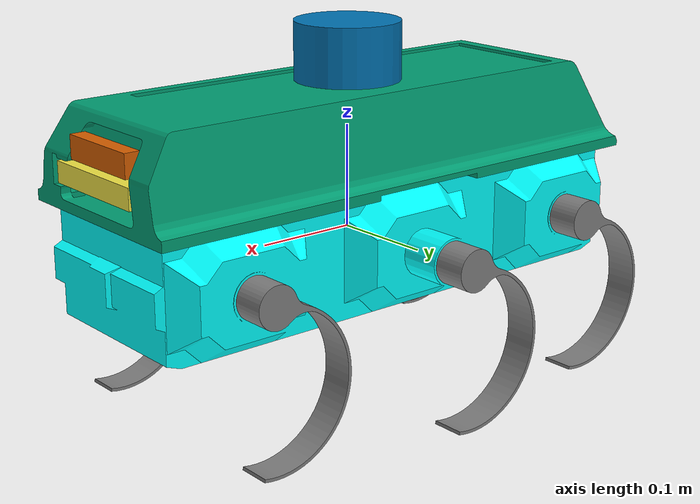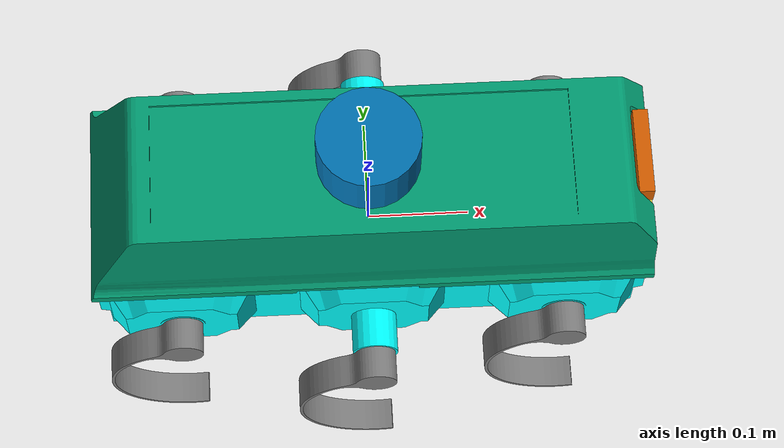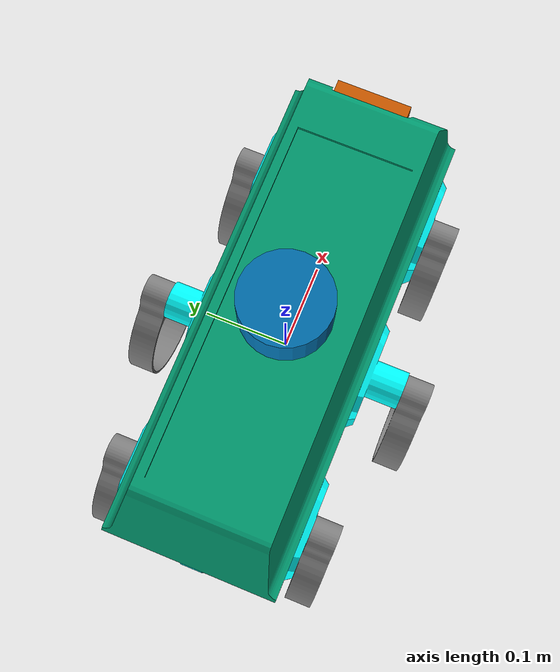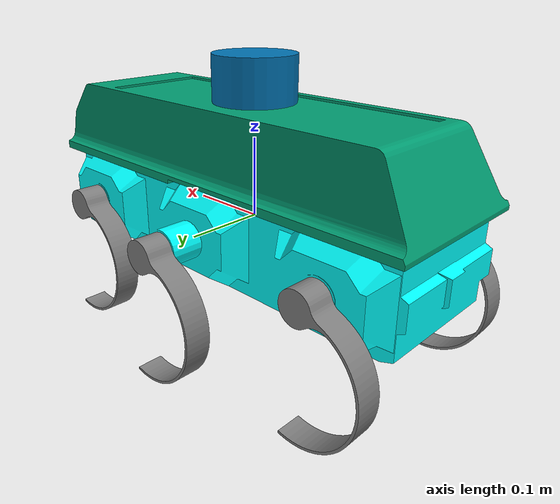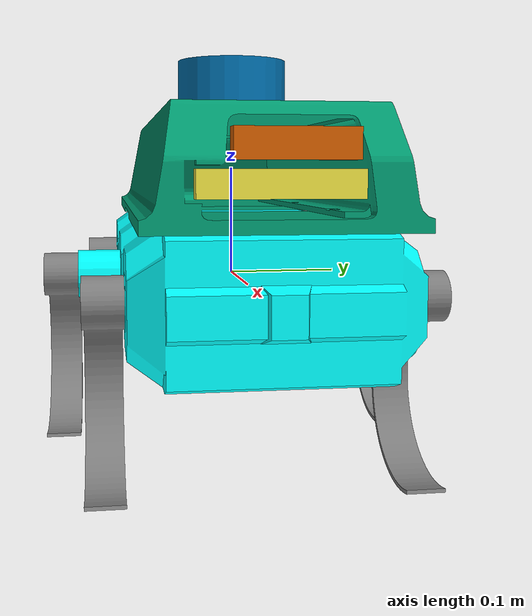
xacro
<?xml version="1.0"?>
<robot name="rhex" xmlns:xacro="http://ros.org/wiki/xacro">

    <!-- Define robot constants -->
    <xacro:property name="base_width" value="0.2"/>
    <xacro:property name="base_length" value="0.554"/>
    <xacro:property name="base_height" value="0.112"/>
    <xacro:property name="upper_case_z_position" value="0.055"/>

    <xacro:property name="ground_clearance" value="0.155"/>

    <xacro:property name="mid_legs_xoff" value="0.0"/>
    <xacro:property name="mid_legs_yoff" value="0.162"/>
    <xacro:property name="edge_legs_xoff" value="0.19"/>
    <xacro:property name="edge_legs_yoff" value="0.1235"/>

    <!-- Include the miscellaneous components -->
    <xacro:include filename="miscellaneous.xacro"/>

    <link name="base_link">
        <visual>
            <origin xyz="0 0 0" rpy="0 0 0"/>
            <geometry>
                <mesh filename="file://$(find rhex_description)/meshes/rpk10_chassis.dae"/>
            </geometry>
            <material name="Cyan"/>
        </visual>

        <collision>
            <origin xyz="0 0 0" rpy="0 0 0"/>
            <geometry>
                <mesh filename="file://$(find rhex_description)/meshes/rpk10_chassis.dae"/>
            </geometry>
        </collision>

    </link>

    <!-- Link the base inertia to the base to get rid of KDL warning (root link with an inertia is not supported) -->
    <link name="base_inertia_link">
        <xacro:box_inertia mass="12.5" width="${base_length}" height="${base_height}" length="${base_width}">
            <origin xyz="0 0 0" rpy="0 0 0"/>
        </xacro:box_inertia>
    </link>

    <joint name="base_inertia_joint" type="fixed">
        <origin xyz="0.0 0.0 0.0" rpy="0 0 0"/>
        <parent link="base_link"/>
        <child link="base_inertia_link"/>
    </joint>

    <!-- Upper case of the robot added -->
    <link name="upper_case_link">
        <visual>
            <origin xyz="0 0 0" rpy="0 0 0"/>
            <geometry>
                <mesh filename="file://$(find rhex_description)/meshes/upper_case.dae" scale="0.001 0.001 0.001"/>
            </geometry>
        </visual>

        <collision>
            <origin xyz="0 0 0" rpy="0 0 0"/>
            <geometry>
                <mesh filename="file://$(find rhex_description)/meshes/upper_case.dae" scale="0.001 0.001 0.001"/>
            </geometry>
        </collision>
    </link>

    <joint name="base_upper_case_joint" type="fixed">
        <origin xyz="0 0 ${upper_case_z_position}" rpy="0 0 0"/>
        <parent link="base_link"/>
        <child link="upper_case_link"/>
    </joint>

    <!-- Include the rest of the simulation properties and body parts-->
    <xacro:include filename="robot_gazebo.xacro"/>
    <xacro:include filename="accessories.xacro"/>
    <xacro:include filename="legs.xacro"/>

    <xacro:leg prefix="rear_right"  x_offset="${-edge_legs_xoff}" y_offset="${-edge_legs_yoff}"/>
    <xacro:leg prefix="rear_left"   x_offset="${-edge_legs_xoff}"  y_offset="${edge_legs_yoff}"/>
    <xacro:leg prefix="mid_left"    x_offset="${mid_legs_xoff}"   y_offset="${mid_legs_yoff}"/>
    <xacro:leg prefix="mid_right"   x_offset="${mid_legs_xoff}"  y_offset="${-mid_legs_yoff}"/>
    <xacro:leg prefix="front_left"  x_offset="${edge_legs_xoff}"  y_offset="${edge_legs_yoff}"/>
    <xacro:leg prefix="front_right" x_offset="${edge_legs_xoff}" y_offset="${-edge_legs_yoff}"/>

    <xacro:macro name="leg_control" params="prefix">
        <joint name="${prefix}_joint">
        <command_interface name="effort">
            <param name="min">-100</param>
            <param name="max">100</param>
        </command_interface>
        <state_interface name="position">
            <param name="initial_value">-1.9</param>
        </state_interface>
        <state_interface name="velocity"/>
        <state_interface name="effort"/>
        </joint>
    </xacro:macro>

    <ros2_control name="GazeboSimSystem" type="system">
        <hardware>
            <plugin>gazebo_ros2_control/GazeboSystem</plugin>
        </hardware>
        <xacro:leg_control prefix="rear_left"/>
        <xacro:leg_control prefix="rear_right"/>
        <xacro:leg_control prefix="mid_left"/>
        <xacro:leg_control prefix="mid_right"/>
        <xacro:leg_control prefix="front_left"/>
        <xacro:leg_control prefix="front_right"/>
    </ros2_control>
</robot>

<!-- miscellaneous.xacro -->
<robot xmlns:xacro="http://www.ros.org/wiki/xacro">

    <!-- This file contains some useful macros and additions regarding the robot model -->

    <!-- Material Colors -->
    <material name="white">
        <color rgba="1 1 1 1"/>
    </material>

    <material name="orange">
        <color rgba="1 0.3 0.1 1"/>
    </material>

    <material name="blue">
        <color rgba="0.2 0.2 1 1"/>
    </material>

    <material name="red">
        <color rgba="1 0.2 0.2 1"/>
    </material>

    <material name="Cyan">
        <color rgba="0 1.0 1.0 1.0"/>
    </material>

    <material name="Gray">
        <color rgba="0.5 0.5 0.5 1.0"/>
    </material>

    <!-- Some common inertial components (Ref:
    https://en.wikipedia.org/wiki/List_of_moments_of_inertia) -->
    <xacro:macro name="sphere_inertia" params="mass radius *origin">
        <inertial>
            <xacro:insert_block name="origin"/>
            <mass value="${mass}"/>
            <inertia ixx="${(2/5) * mass * (radius*radius)}" ixy="0.0" ixz="0.0"
                iyy="${(2/5) * mass * (radius*radius)}" iyz="0.0"
                izz="${(2/5) * mass * (radius*radius)}"/>
        </inertial>
    </xacro:macro>

    <xacro:macro name="box_inertia" params="mass width height length *origin">
        <inertial>
            <xacro:insert_block name="origin"/>
            <mass value="${mass}"/>
            <inertia ixx="${(1/12) * mass * (length*length + height*height)}" ixy="0.0" ixz="0.0"
                iyy="${(1/12) * mass * (width*width + height*height)}" iyz="0.0"
                izz="${(1/12) * mass * (width*width + length*length)}"/>
        </inertial>
    </xacro:macro>

    <xacro:macro name="cylinder_inertia" params="mass radius length *origin">
        <inertial>
            <xacro:insert_block name="origin"/>
            <mass value="${mass}"/>
            <inertia ixx="${(1/12) * mass * (3*radius*radius + length*length)}" ixy="0.0" ixz="0.0"
                iyy="${(1/12) * mass * (3*radius*radius + length*length)}" iyz="0.0"
                izz="${(1/2)  * mass * (radius*radius)}"/>
        </inertial>
    </xacro:macro>

    <xacro:macro name="empty_inertia" params="mass length *origin">
        <inertial>
            <xacro:insert_block name="origin"/>
            <mass value="${mass}"/>
            <inertia ixx="0.0" ixy="0.0" ixz="0.0"
                iyx="0.0" iyy="0.0" iyz="0.0"
                izx="0.0" izy="0.0" izz="0.0"/>
        </inertial>
    </xacro:macro>

    <xacro:macro name="rod_inertia" params="mass length *origin">
        <inertial>
            <xacro:insert_block name="origin"/>
            <mass value="${mass}"/>
            <inertia ixx="${(1/3) * mass * length*length}" ixy="0.0" ixz="0.0"
                iyy="0.0" iyz="0.0"
                izz="${(1/3) * mass * length*length}"/>
        </inertial>
    </xacro:macro>

</robot>

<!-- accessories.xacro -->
<robot xmlns:xacro="http://ros.org/wiki/xacro">

    <!-- Define robot constants -->
    <xacro:property name="base_width" value="0.2"/>
    <xacro:property name="base_length" value="0.554"/>
    <xacro:property name="base_height" value="0.112"/>
    <xacro:property name="upper_case_z_position" value="0.058"/>
    <xacro:property name="imu_y_position" value="-0.005"/>
    <xacro:property name="imu_z_position" value="${base_height/2 + 0.0325}"/>
    <xacro:property name="depth_cam_x_position" value="${base_length/2 - 0.01}"/>
    <xacro:property name="depth_cam_y_position" value="0.0055"/>
    <xacro:property name="depth_cam_z_position" value="${base_height + 0.0035}"/>

    <!-- IMU (Internal Measurement Unit) -->
    <link name="imu_link">
        <visual>
            <origin xyz="0 0 0" rpy="0 0 0"/>
            <geometry>
                <box size="0.015 0.115 0.020"/>
            </geometry>
        </visual>

        <collision>
            <origin xyz="0 0 0" rpy="0 0 0"/>
            <geometry>
                <box size="0.015 0.115 0.020"/>
            </geometry>
        </collision>

        <xacro:box_inertia mass="0.001" width="0.01" height="0.01" length="0.01">
            <origin xyz="0 0 0" rpy="0 0 0" />
        </xacro:box_inertia>
    </link>

    <joint name="imu_joint" type="fixed">
        <origin xyz="${depth_cam_x_position} ${imu_y_position} ${imu_z_position}" rpy="0 0 0"/>
        <parent link="base_link" />
        <child link="imu_link" />
    </joint>

    <gazebo reference="imu_link">
        <sensor name="imu_sensor" type="imu">
            <plugin filename="libgazebo_ros_imu_sensor.so" name="imu_plugin">
                <ros>
                    <namespace>/imu</namespace>
                    <remapping>~/out:=data</remapping>
                </ros>
                <initial_orientation_as_reference>false</initial_orientation_as_reference>
            </plugin>
            <always_on>true</always_on>
            <update_rate>1000</update_rate>
            <visualize>true</visualize>
            <imu>
                <angular_velocity>
                    <x>
                        <noise type="gaussian">
                            <mean>0.0</mean>
                            <stddev>2e-4</stddev>
                            <bias_mean>0.0000075</bias_mean>
                            <bias_stddev>0.0000008</bias_stddev>
                        </noise>
                    </x>
                    <y>
                        <noise type="gaussian">
                            <mean>0.0</mean>
                            <stddev>2e-4</stddev>
                            <bias_mean>0.0000075</bias_mean>
                            <bias_stddev>0.0000008</bias_stddev>
                        </noise>
                    </y>
                    <z>
                        <noise type="gaussian">
                            <mean>0.0</mean>
                            <stddev>2e-4</stddev>
                            <bias_mean>0.0000075</bias_mean>
                            <bias_stddev>0.0000008</bias_stddev>
                        </noise>
                    </z>
                </angular_velocity>
                <linear_acceleration>
                    <x>
                        <noise type="gaussian">
                            <mean>0.0</mean>
                            <stddev>1.7e-2</stddev>
                            <bias_mean>0.1</bias_mean>
                            <bias_stddev>0.001</bias_stddev>
                        </noise>
                    </x>
                    <y>
                        <noise type="gaussian">
                            <mean>0.0</mean>
                            <stddev>1.7e-2</stddev>
                            <bias_mean>0.1</bias_mean>
                            <bias_stddev>0.001</bias_stddev>
                        </noise>
                    </y>
                    <z>
                        <noise type="gaussian">
                            <mean>0.0</mean>
                            <stddev>1.7e-2</stddev>
                            <bias_mean>0.1</bias_mean>
                            <bias_stddev>0.001</bias_stddev>
                        </noise>
                    </z>
                </linear_acceleration>
            </imu>
        </sensor>
    </gazebo>

    <!-- LIDAR (Light Detection and Ranging) -->
    <link name="lidar_link">
        <collision>
            <origin xyz="0 0 0" rpy="0 0 0"/>
            <geometry>
                <cylinder radius="0.0508" length="0.056"/>
            </geometry>
        </collision>

        <visual>
            <origin xyz="0 0 0" rpy="0 0 0"/>
            <geometry>
                <cylinder radius="0.0508" length="0.056"/>
            </geometry>
        </visual>

        <xacro:cylinder_inertia mass="0.125" radius="0.0508" length="0.056">
            <origin xyz="0 0 0" rpy="0 0 0"/>
        </xacro:cylinder_inertia>
    </link>

    <joint name="lidar_joint" type="fixed">
        <parent link="base_link"/>
        <child link="lidar_link"/>
        <origin xyz="0 0 ${2*upper_case_z_position + base_height/2}" rpy="0 0 0"/>
    </joint>

    <gazebo reference="lidar_link">
        <sensor name="lidar" type="ray">
            <always_on>true</always_on>
            <visualize>true</visualize>
            <update_rate>5</update_rate>
            <ray>
                <scan>
                    <horizontal>
                        <samples>360</samples>
                        <resolution>1.000000</resolution>
                        <min_angle>0.000000</min_angle>
                        <max_angle>6.280000</max_angle>
                    </horizontal>
                </scan>
                <range>
                    <min>0.120000</min>
                    <max>3.5</max>
                    <resolution>0.015000</resolution>
                </range>
                <noise>
                    <type>gaussian</type>
                    <mean>0.0</mean>
                    <stddev>0.01</stddev>
                </noise>
            </ray>
            <plugin name="scan" filename="libgazebo_ros_ray_sensor.so">
                <ros>
                    <remapping>~/out:=scan</remapping>
                </ros>
                <output_type>sensor_msgs/LaserScan</output_type>
                <frame_name>lidar_link</frame_name>
            </plugin>
        </sensor>
    </gazebo>

    <!-- RGBD Camera -->
    <link name="camera_link">
        <visual>
            <origin xyz="0 0 0" rpy="0 0 0"/>
            <geometry>
                <box size="0.015 0.0867 0.022"/>
            </geometry>
        </visual>

        <collision>
            <origin xyz="0 0 0" rpy="0 0 0"/>
            <geometry>
                <box size="0.015 0.0867 0.022"/>
            </geometry>
        </collision>

        <xacro:box_inertia mass="0.02" width="0.015" height="0.022" length="0.0867">
            <origin xyz="0 0 0" rpy="0 0 0"/>
        </xacro:box_inertia>
    </link>

    <joint name="camera_joint" type="fixed">
        <parent link="base_link"/>
        <child link="camera_link"/>
        <origin xyz="${depth_cam_x_position} ${depth_cam_y_position} ${depth_cam_z_position}" rpy="0 0 0"/>
    </joint>

    <link name="camera_depth_frame"/>

    <joint name="camera_depth_joint" type="fixed">
        <origin xyz="0 0 0" rpy="${-pi/2} 0 ${-pi/2}"/>
        <parent link="camera_link"/>
        <child link="camera_depth_frame"/>
    </joint>

    <gazebo reference="camera_link">
        <sensor name="depth_camera" type="depth">
            <visualize>true</visualize>
            <update_rate>30.0</update_rate>
            <camera name="camera">
                <horizontal_fov>1.047198</horizontal_fov>
                <image>
                    <width>640</width>
                    <height>480</height>
                    <format>B8G8R8</format>
                </image>
                <clip>
                    <near>0.05</near>
                    <far>30</far>
                </clip>
                <noise>
                    <type>gaussian</type>
                    <mean>0.0</mean>
                    <stddev>0.007</stddev>
                </noise>
            </camera>
            <plugin name="depth_camera_controller" filename="libgazebo_ros_camera.so">
                <update_rate>0.0</update_rate>
                <frame_name>camera_depth_frame</frame_name>
                <min_depth>0.2</min_depth>
                <max_depth>4.0</max_depth>
            </plugin>
        </sensor>
    </gazebo>

</robot>

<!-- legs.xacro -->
<robot xmlns:xacro="http://www.ros.org/wiki/xacro">

    <xacro:macro name="leg" params="prefix x_offset y_offset">
        <link name="${prefix}_link">
            <visual>
                <origin xyz="0 0 0" rpy="0 0 0"/>
                <geometry>
                <mesh filename="file://$(find rhex_description)/meshes/rpk10_leg.dae"/>
                </geometry>
                <material name="Gray"/>
            </visual>

            <collision>
                <origin xyz="0 0 0" rpy="0 0 0"/>
                <geometry>
                    <mesh filename="file://$(find rhex_description)/meshes/rpk10_leg.dae"/>
                </geometry>
            </collision>

            <xacro:box_inertia mass="0.05" width="0.0979" height="0.1744" length="0.0315">
                <origin xyz="0 0 -0.08" rpy="0 0 0"/>
            </xacro:box_inertia>
        </link>

        <joint name="${prefix}_joint" type="continuous">
            <axis xyz="0 1 0"/>
            <parent link="base_link"/>
            <child link="${prefix}_link"/>
            <origin xyz="${x_offset} ${y_offset} 0" rpy="0 0 0"/>
            <dynamics damping="0.5" friction="0.0"/>
        </joint>

        <gazebo reference="${prefix}_link">
            <kp>1000000000000.0</kp>
            <kd>100.0</kd>
            <mu1>50</mu1>
            <mu2>50</mu2>
            <minDepth>0.05</minDepth>
        </gazebo>

    </xacro:macro>

</robot>
